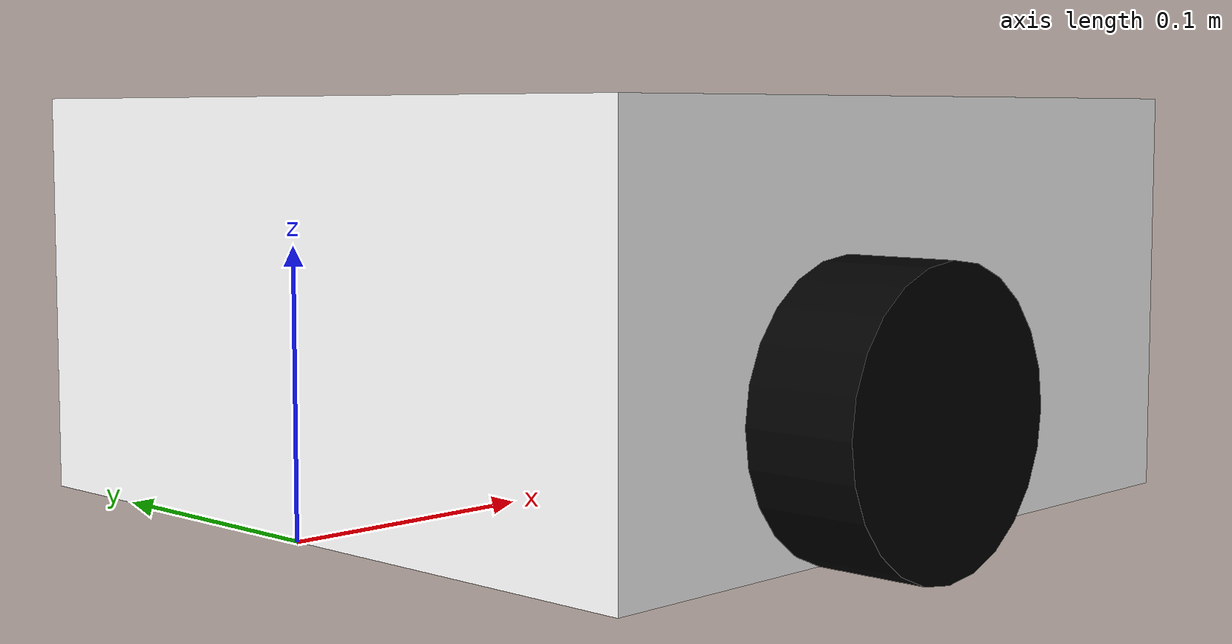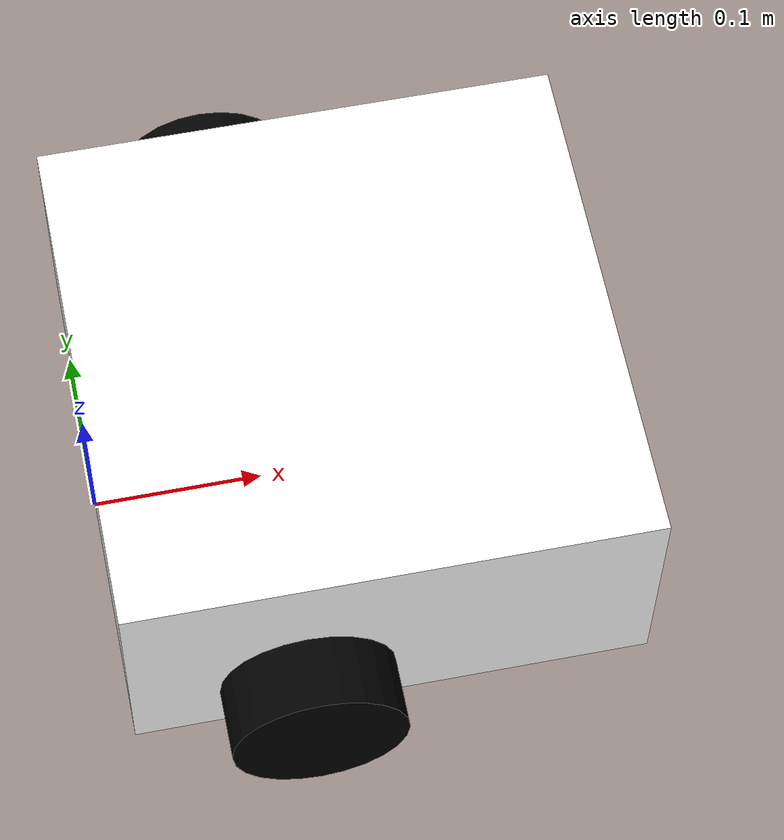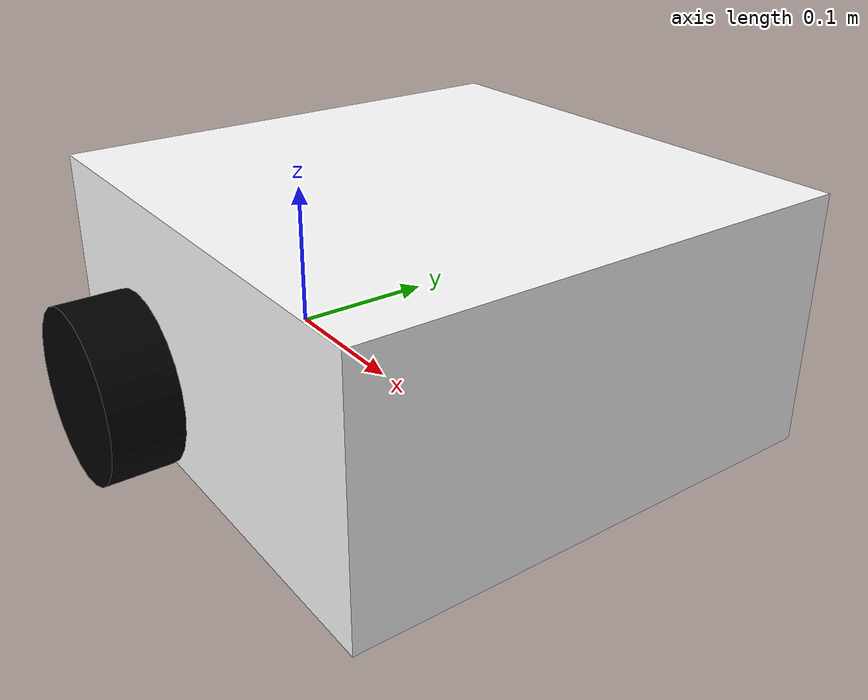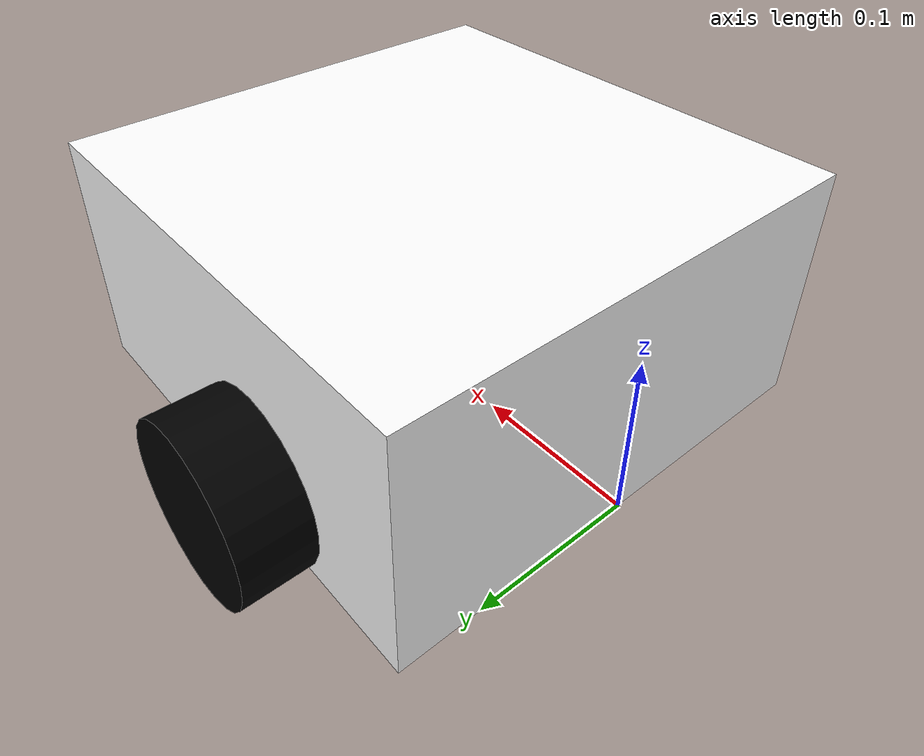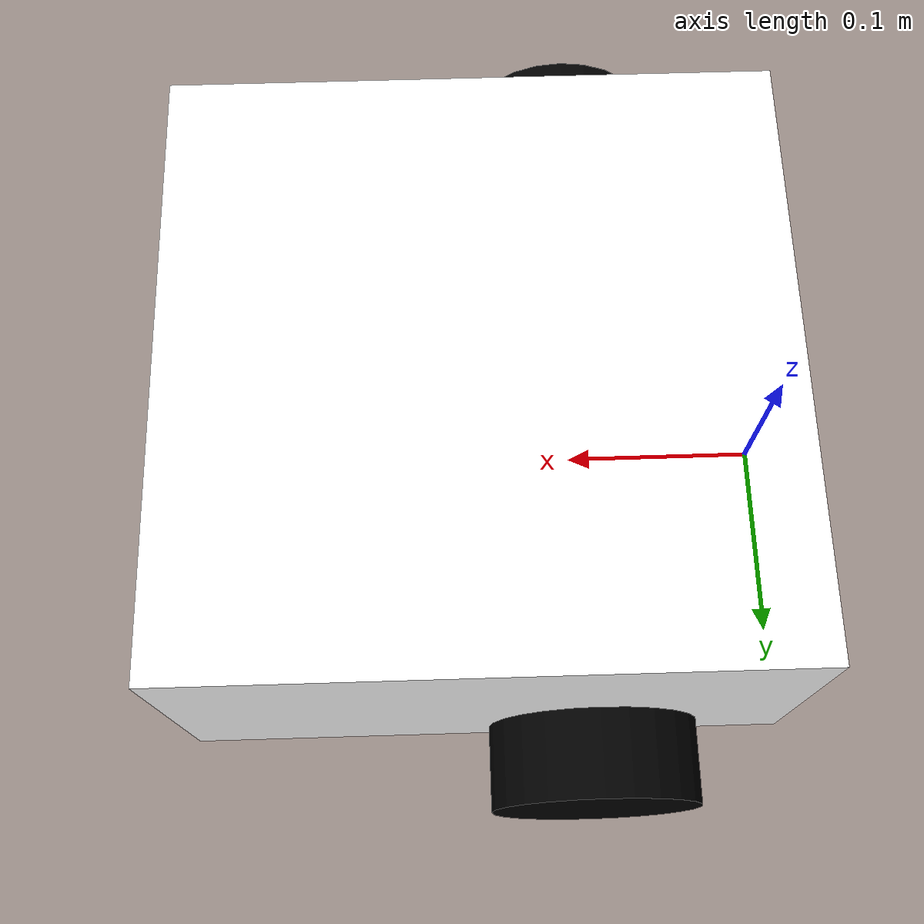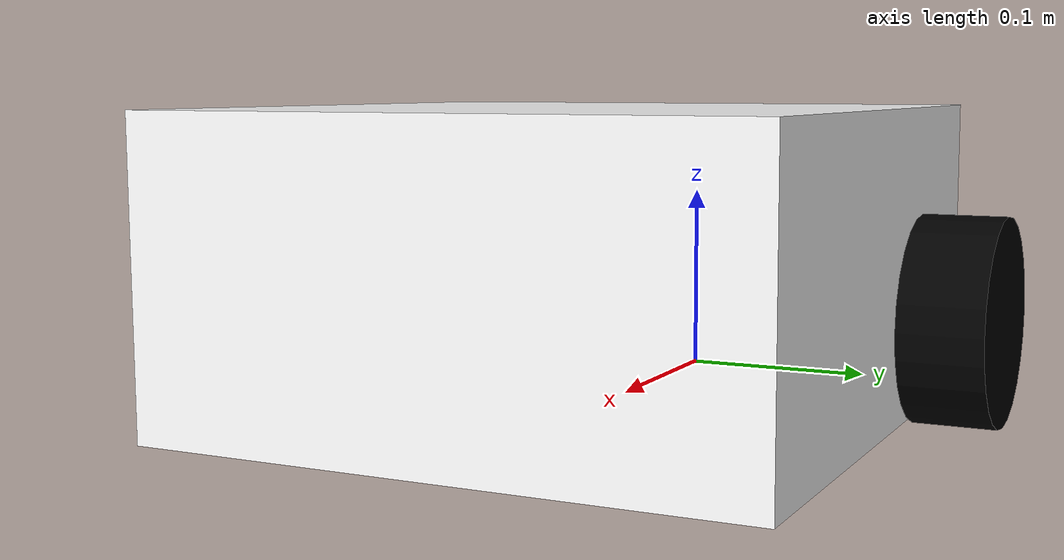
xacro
<?xml version="1.0"?>    <!--every xacro file starts with this; it just tells the computer "this is an XML file." -->

<robot xmlns:xacro="http://www.ros.org/wiki/xacro">      <!-- this is the outer wrapper every URDF/xacro file needs. xmlns:xacro is just enabling the special xacro: features (like macros) inside this file. -->
    <xacro:include filename="inertial_macros.xacro"/>

    <material name="white">
        <color rgba="1 1 1 1"/>
    </material>

    <material name="orange">
        <color rgba="1 0.3 0.1 1"/>
    </material>

    <material name="black">
        <color rgba="0 0 0 1"/>
    </material>

    <!-- BASE LINK -->
    <!-- an empty link -->
    <link name="base_link">     <!-- base_link is a convention: a reference-point origin for your whole robot (like the (0,0,0) of a graph). -->
    </link>

    <!-- CHASSIS LINK -->
    <!-- connecting base_link to the actual body -->
    <joint name="chassis_joint" type="fixed"> <!-- here, fixed means these two parts never move relative to each other (as opposed to a wheel joint, which would rotate).-->
        <parent link="base_link"/>
        <child link="chassis"/>
        <origin xyz="0 0 0"/> <!-- means "the chassis sits exactly at base_link's position, no offset." -->
    </joint>

    <!-- the actual visible box -->
    <link name="chassis">
        <visual> <!-- visual is the part you see in RViz, Gazebo, etc. -->
            <origin xyz="0.15 0 0.075"/>
            <geometry>
                <box size="0.3 0.3 0.15"/>
            </geometry>
            <material name="white"/>
        </visual>
        <collision> <!-- collision is the part used for physics simulation and obstacle avoidance -->
            <origin xyz="0.15 0 0.075"/>
            <geometry>
                <box size="0.3 0.3 0.15"/>
            </geometry>
        </collision>
        <xacro:box_inertia mass="0.5" x="0.3" y="0.3" z="0.15"/>
    </link>

    <!-- GAZEBO MATERIAL + PHYSICS FOR CHASSIS -->
    <gazebo reference="chassis">
        <material>Gazebo/White</material>
        <mu1>0.2</mu1>
        <mu2>0.2</mu2> <!-- mu2 is the Coefficient of Friction in the secondary direction (left/right). Setting both to 0.2 means the chassis has the same moderate "grippiness" from all sides.-->
    </gazebo>

    <!-- WHEEL LINKS AND JOINTS -->
<xacro:macro name="wheel" params="prefix x_reflect y_reflect">
    <joint name="${prefix}_wheel_joint" type="continuous">
        <parent link="chassis"/>
        <child link="${prefix}_wheel"/>
        <origin xyz="0.1 ${y_reflect * 0.175} 0.05" rpy="${-pi/2} 0 0"/>
        <axis xyz="0 0 1"/>
    </joint>

    <link name="${prefix}_wheel">
        <visual>
            <geometry>x
                <cylinder radius="0.05" length="0.04"/>
            </geometry>
            <material name="black"/>
        </visual>
        <collision>
            <geometry>
                <cylinder radius="0.05" length="0.04"/>
            </geometry>
        </collision>
        <xacro:cylinder_inertia mass="0.1" length="0.04" radius="0.05"/>
    </link>

    <gazebo reference="${prefix}_wheel">
        <material>Gazebo/Black</material>
        <mu1>1.0</mu1>
        <mu2>1.0</mu2>
    </gazebo>
</xacro:macro>

<xacro:wheel prefix="left" x_reflect="1" y_reflect="1"/>
<xacro:wheel prefix="right" x_reflect="1" y_reflect="-1"/>

    <gazebo>
<plugin filename="gz-sim-diff-drive-system" name="gz::sim::systems::DiffDrive">
    <left_joint>left_wheel_joint</left_joint>
    <right_joint>right_wheel_joint</right_joint>
    <wheel_separation>0.3</wheel_separation>
    <wheel_radius>0.05</wheel_radius>
    <odom_publish_frequency>10</odom_publish_frequency>
    <topic>cmd_vel</topic>
    <odom_topic>odom</odom_topic>
    <frame_id>odom</frame_id>
    <child_frame_id>base_link</child_frame_id>
    <tf_topic>tf</tf_topic>
</plugin>
</gazebo>

</robot>

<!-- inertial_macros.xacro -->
<robot xmlns:xacro="http://www.ros.org/wiki/xacro">

    <xacro:macro name="box_inertia" params="mass x y z"> <!-- Defines a custom, reusable function named "box_inertia" that requires 4 inputs: mass, length (x), width (y), and height (z). -->
        <inertial>
            <mass value="${mass}"/> <!--Sets the weight of the part. The ${...} tells Xacro to inject the "mass" number we passed into the macro.-->
            <inertia ixx="${(1/12) * mass * (y*y+z*z)}" ixy="0.0" ixz="0.0"
                      iyy="${(1/12) * mass * (x*x+z*z)}" iyz="0.0"
                      izz="${(1/12) * mass * (x*x+y*y)}"/>
                    <!-- ixx , Calculates the resistance to rolling on the X-axis using standard physics math. The cross-products (ixy, ixz) are zero because we assume the weight is perfectly balanced.-->
                    <!-- iyy, Calculates the resistance to pitching on the Y-axis.-->
                    <!-- izz, Calculates the resistance to yawing (spinning) on the Z-axis.-->
        </inertial>
    </xacro:macro>

    <xacro:macro name="cylinder_inertia" params="mass length radius"> <!-- Defines a reusable function for cylindrical parts, requiring 3 inputs: mass, length (height), and radius (thickness). -->
        <inertial>
            <mass value="${mass}"/> <!-- Injects the provided mass value. -->
            <inertia ixx="${(1/12) * mass * (3*radius*radius + length*length)}" ixy="0.0" ixz="0.0"
                      iyy="${(1/12) * mass * (3*radius*radius + length*length)}" iyz="0.0"
                      izz="${(1/2) * mass * (radius*radius)}"/>
                    <!-- ixx, Calculates the X-axis rotational inertia for a cylinder standing upright.-->
                    <!-- iyy, Calculates the Y-axis rotational inertia (identical to the X-axis because a cylinder is symmetrical from the side).-->
                    <!-- izz, Calculates the Z-axis rotational inertia (spinning the cylinder like a top).-->
        </inertial> <!-- Closes the physics block.-->
    </xacro:macro> <!-- Ends the cylinder macro.-->

    <xacro:macro name="sphere_inertia" params="mass radius"> <!-- Defines a reusable function for spherical parts, requiring only 2 inputs: mass and radius. -->
        <inertial>
            <mass value="${mass}"/>
            <inertia ixx="${(2/5) * mass * (radius*radius)}" ixy="0.0" ixz="0.0"
                      iyy="${(2/5) * mass * (radius*radius)}" iyz="0.0"
                      izz="${(2/5) * mass * (radius*radius)}"/>
                    <!-- ixx, Calculates X-axis rotational inertia for a solid ball.-->
                    <!-- iyy, Calculates Y-axis rotational inertia for a solid ball.-->
                    <!-- izz, Calculates Z-axis rotational inertia for a solid ball.-->
        </inertial>
    </xacro:macro>

</robot>
